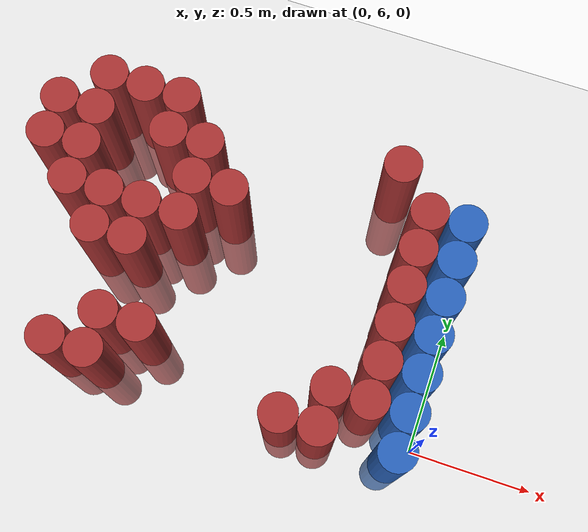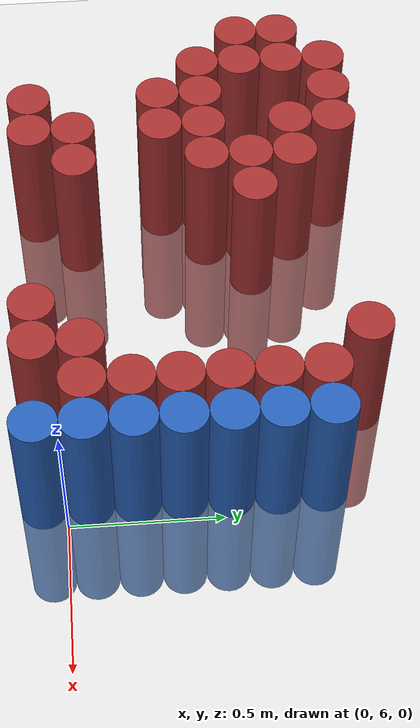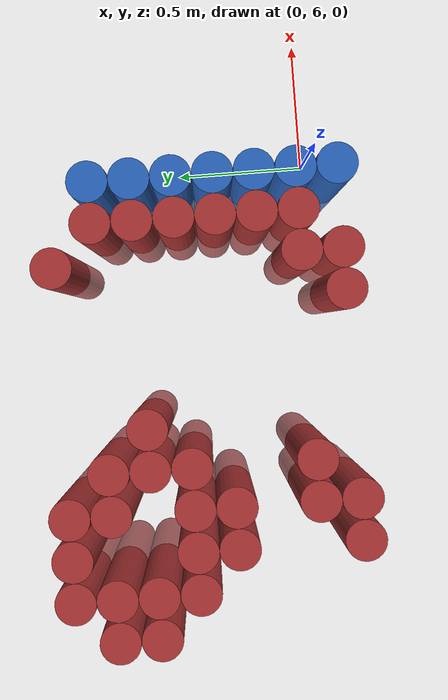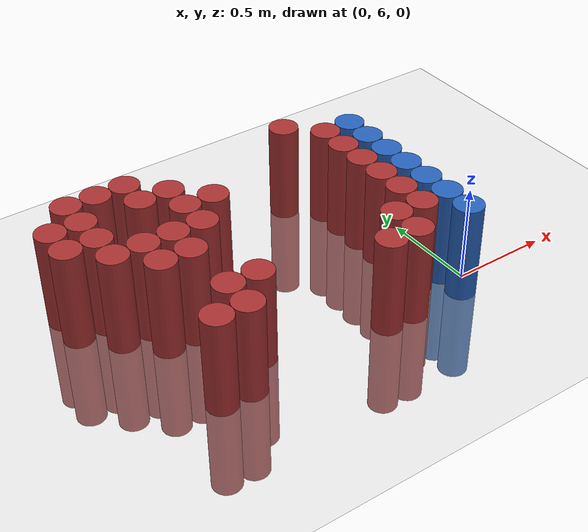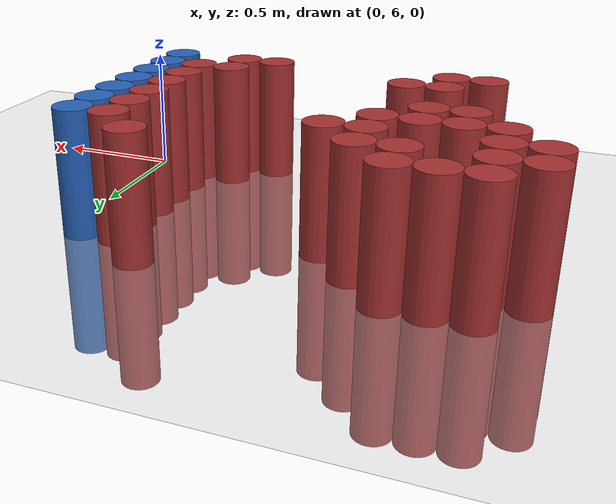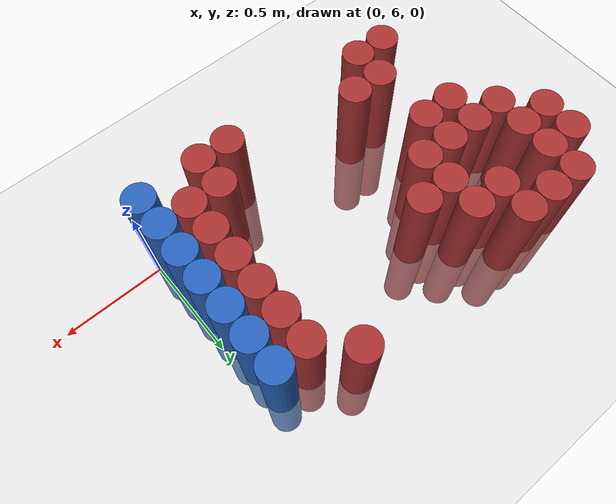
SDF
<sdf version="1.6">
 <world name="default">
  <model name="ground_plane">
   <static>1</static>
   <link name="link">
    <collision name="collision">
     <geometry><plane><normal>0 0 1</normal><size>100 100</size></plane></geometry>
     <surface><friction><ode><mu>100</mu><mu2>50</mu2></ode></friction></surface>
    </collision>
    <visual name="visual">
     <cast_shadows>0</cast_shadows>
     <geometry><plane><normal>0 0 1</normal><size>100 100</size></plane></geometry>
     <material>
      <script><uri>file://media/materials/scripts/gazebo.material</uri><name>Gazebo/Grey</name></script>
     </material>
    </visual>
   </link>
  </model>
  <model name="unit_cylinder_212">
   <static>1</static>
   <pose>-1.725000 6.675000 0.000000 0.000000 0.000000 0.000000</pose>
   <link name="link">
    <inertial>
     <mass>1</mass>
     <inertia><ixx>0.145833</ixx><ixy>0</ixy><ixz>0</ixz><iyy>0.145833</iyy><iyz>0</iyz><izz>0.125</izz></inertia>
    </inertial>
    <collision name="collision">
     <geometry><cylinder><radius>0.075000</radius><length>1</length></cylinder></geometry>
    </collision>
    <visual name="visual">
     <geometry><cylinder><radius>0.075000</radius><length>1</length></cylinder></geometry>
     <material>
      <ambient>0.648000 0.192000 0.192000 1</ambient>
      <diffuse>0.648000 0.192000 0.192000 1</diffuse>
     </material>
     <material>
      <script><name>Gazebo/Grey</name><uri>file://media/materials/scripts/gazebo.material</uri></script>
     </material>
    </visual>
    <sensor name="sensor_contact" type="contact"><contact><collision>collision</collision></contact></sensor>
   </link>
   <plugin filename="gz-sim-touchplugin-system" name="gz::sim::systems::TouchPlugin">
    <target>robot</target>
    <namespace>robot</namespace>
    <time>0.001</time>
    <enabled>true</enabled>
   </plugin>
  </model>
  <model name="unit_cylinder_213">
   <static>1</static>
   <pose>-1.725000 6.825000 0.000000 0.000000 0.000000 0.000000</pose>
   <link name="link">
    <inertial>
     <mass>1</mass>
     <inertia><ixx>0.145833</ixx><ixy>0</ixy><ixz>0</ixz><iyy>0.145833</iyy><iyz>0</iyz><izz>0.125</izz></inertia>
    </inertial>
    <collision name="collision">
     <geometry><cylinder><radius>0.075000</radius><length>1</length></cylinder></geometry>
    </collision>
    <visual name="visual">
     <geometry><cylinder><radius>0.075000</radius><length>1</length></cylinder></geometry>
     <material>
      <ambient>0.648000 0.192000 0.192000 1</ambient>
      <diffuse>0.648000 0.192000 0.192000 1</diffuse>
     </material>
     <material>
      <script><name>Gazebo/Grey</name><uri>file://media/materials/scripts/gazebo.material</uri></script>
     </material>
    </visual>
    <sensor name="sensor_contact" type="contact"><contact><collision>collision</collision></contact></sensor>
   </link>
   <plugin filename="gz-sim-touchplugin-system" name="gz::sim::systems::TouchPlugin">
    <target>robot</target>
    <namespace>robot</namespace>
    <time>0.001</time>
    <enabled>true</enabled>
   </plugin>
  </model>
  <model name="unit_cylinder_218">
   <static>1</static>
   <pose>-1.575000 6.525000 0.000000 0.000000 0.000000 0.000000</pose>
   <link name="link">
    <inertial>
     <mass>1</mass>
     <inertia><ixx>0.145833</ixx><ixy>0</ixy><ixz>0</ixz><iyy>0.145833</iyy><iyz>0</iyz><izz>0.125</izz></inertia>
    </inertial>
    <collision name="collision">
     <geometry><cylinder><radius>0.075000</radius><length>1</length></cylinder></geometry>
    </collision>
    <visual name="visual">
     <geometry><cylinder><radius>0.075000</radius><length>1</length></cylinder></geometry>
     <material>
      <ambient>0.648000 0.192000 0.192000 1</ambient>
      <diffuse>0.648000 0.192000 0.192000 1</diffuse>
     </material>
     <material>
      <script><name>Gazebo/Grey</name><uri>file://media/materials/scripts/gazebo.material</uri></script>
     </material>
    </visual>
    <sensor name="sensor_contact" type="contact"><contact><collision>collision</collision></contact></sensor>
   </link>
   <plugin filename="gz-sim-touchplugin-system" name="gz::sim::systems::TouchPlugin">
    <target>robot</target>
    <namespace>robot</namespace>
    <time>0.001</time>
    <enabled>true</enabled>
   </plugin>
  </model>
  <model name="unit_cylinder_219">
   <static>1</static>
   <pose>-1.575000 6.675000 0.000000 0.000000 0.000000 0.000000</pose>
   <link name="link">
    <inertial>
     <mass>1</mass>
     <inertia><ixx>0.145833</ixx><ixy>0</ixy><ixz>0</ixz><iyy>0.145833</iyy><iyz>0</iyz><izz>0.125</izz></inertia>
    </inertial>
    <collision name="collision">
     <geometry><cylinder><radius>0.075000</radius><length>1</length></cylinder></geometry>
    </collision>
    <visual name="visual">
     <geometry><cylinder><radius>0.075000</radius><length>1</length></cylinder></geometry>
     <material>
      <ambient>0.648000 0.192000 0.192000 1</ambient>
      <diffuse>0.648000 0.192000 0.192000 1</diffuse>
     </material>
     <material>
      <script><name>Gazebo/Grey</name><uri>file://media/materials/scripts/gazebo.material</uri></script>
     </material>
    </visual>
    <sensor name="sensor_contact" type="contact"><contact><collision>collision</collision></contact></sensor>
   </link>
   <plugin filename="gz-sim-touchplugin-system" name="gz::sim::systems::TouchPlugin">
    <target>robot</target>
    <namespace>robot</namespace>
    <time>0.001</time>
    <enabled>true</enabled>
   </plugin>
  </model>
  <model name="unit_cylinder_220">
   <static>1</static>
   <pose>-1.575000 6.825000 0.000000 0.000000 0.000000 0.000000</pose>
   <link name="link">
    <inertial>
     <mass>1</mass>
     <inertia><ixx>0.145833</ixx><ixy>0</ixy><ixz>0</ixz><iyy>0.145833</iyy><iyz>0</iyz><izz>0.125</izz></inertia>
    </inertial>
    <collision name="collision">
     <geometry><cylinder><radius>0.075000</radius><length>1</length></cylinder></geometry>
    </collision>
    <visual name="visual">
     <geometry><cylinder><radius>0.075000</radius><length>1</length></cylinder></geometry>
     <material>
      <ambient>0.648000 0.192000 0.192000 1</ambient>
      <diffuse>0.648000 0.192000 0.192000 1</diffuse>
     </material>
     <material>
      <script><name>Gazebo/Grey</name><uri>file://media/materials/scripts/gazebo.material</uri></script>
     </material>
    </visual>
    <sensor name="sensor_contact" type="contact"><contact><collision>collision</collision></contact></sensor>
   </link>
   <plugin filename="gz-sim-touchplugin-system" name="gz::sim::systems::TouchPlugin">
    <target>robot</target>
    <namespace>robot</namespace>
    <time>0.001</time>
    <enabled>true</enabled>
   </plugin>
  </model>
  <model name="unit_cylinder_221">
   <static>1</static>
   <pose>-1.575000 6.975000 0.000000 0.000000 0.000000 0.000000</pose>
   <link name="link">
    <inertial>
     <mass>1</mass>
     <inertia><ixx>0.145833</ixx><ixy>0</ixy><ixz>0</ixz><iyy>0.145833</iyy><iyz>0</iyz><izz>0.125</izz></inertia>
    </inertial>
    <collision name="collision">
     <geometry><cylinder><radius>0.075000</radius><length>1</length></cylinder></geometry>
    </collision>
    <visual name="visual">
     <geometry><cylinder><radius>0.075000</radius><length>1</length></cylinder></geometry>
     <material>
      <ambient>0.648000 0.192000 0.192000 1</ambient>
      <diffuse>0.648000 0.192000 0.192000 1</diffuse>
     </material>
     <material>
      <script><name>Gazebo/Grey</name><uri>file://media/materials/scripts/gazebo.material</uri></script>
     </material>
    </visual>
    <sensor name="sensor_contact" type="contact"><contact><collision>collision</collision></contact></sensor>
   </link>
   <plugin filename="gz-sim-touchplugin-system" name="gz::sim::systems::TouchPlugin">
    <target>robot</target>
    <namespace>robot</namespace>
    <time>0.001</time>
    <enabled>true</enabled>
   </plugin>
  </model>
  <model name="unit_cylinder_228">
   <static>1</static>
   <pose>-1.425000 5.925000 0.000000 0.000000 0.000000 0.000000</pose>
   <link name="link">
    <inertial>
     <mass>1</mass>
     <inertia><ixx>0.145833</ixx><ixy>0</ixy><ixz>0</ixz><iyy>0.145833</iyy><iyz>0</iyz><izz>0.125</izz></inertia>
    </inertial>
    <collision name="collision">
     <geometry><cylinder><radius>0.075000</radius><length>1</length></cylinder></geometry>
    </collision>
    <visual name="visual">
     <geometry><cylinder><radius>0.075000</radius><length>1</length></cylinder></geometry>
     <material>
      <ambient>0.648000 0.192000 0.192000 1</ambient>
      <diffuse>0.648000 0.192000 0.192000 1</diffuse>
     </material>
     <material>
      <script><name>Gazebo/Grey</name><uri>file://media/materials/scripts/gazebo.material</uri></script>
     </material>
    </visual>
    <sensor name="sensor_contact" type="contact"><contact><collision>collision</collision></contact></sensor>
   </link>
   <plugin filename="gz-sim-touchplugin-system" name="gz::sim::systems::TouchPlugin">
    <target>robot</target>
    <namespace>robot</namespace>
    <time>0.001</time>
    <enabled>true</enabled>
   </plugin>
  </model>
  <model name="unit_cylinder_229">
   <static>1</static>
   <pose>-1.425000 6.375000 0.000000 0.000000 0.000000 0.000000</pose>
   <link name="link">
    <inertial>
     <mass>1</mass>
     <inertia><ixx>0.145833</ixx><ixy>0</ixy><ixz>0</ixz><iyy>0.145833</iyy><iyz>0</iyz><izz>0.125</izz></inertia>
    </inertial>
    <collision name="collision">
     <geometry><cylinder><radius>0.075000</radius><length>1</length></cylinder></geometry>
    </collision>
    <visual name="visual">
     <geometry><cylinder><radius>0.075000</radius><length>1</length></cylinder></geometry>
     <material>
      <ambient>0.648000 0.192000 0.192000 1</ambient>
      <diffuse>0.648000 0.192000 0.192000 1</diffuse>
     </material>
     <material>
      <script><name>Gazebo/Grey</name><uri>file://media/materials/scripts/gazebo.material</uri></script>
     </material>
    </visual>
    <sensor name="sensor_contact" type="contact"><contact><collision>collision</collision></contact></sensor>
   </link>
   <plugin filename="gz-sim-touchplugin-system" name="gz::sim::systems::TouchPlugin">
    <target>robot</target>
    <namespace>robot</namespace>
    <time>0.001</time>
    <enabled>true</enabled>
   </plugin>
  </model>
  <model name="unit_cylinder_230">
   <static>1</static>
   <pose>-1.425000 6.525000 0.000000 0.000000 0.000000 0.000000</pose>
   <link name="link">
    <inertial>
     <mass>1</mass>
     <inertia><ixx>0.145833</ixx><ixy>0</ixy><ixz>0</ixz><iyy>0.145833</iyy><iyz>0</iyz><izz>0.125</izz></inertia>
    </inertial>
    <collision name="collision">
     <geometry><cylinder><radius>0.075000</radius><length>1</length></cylinder></geometry>
    </collision>
    <visual name="visual">
     <geometry><cylinder><radius>0.075000</radius><length>1</length></cylinder></geometry>
     <material>
      <ambient>0.648000 0.192000 0.192000 1</ambient>
      <diffuse>0.648000 0.192000 0.192000 1</diffuse>
     </material>
     <material>
      <script><name>Gazebo/Grey</name><uri>file://media/materials/scripts/gazebo.material</uri></script>
     </material>
    </visual>
    <sensor name="sensor_contact" type="contact"><contact><collision>collision</collision></contact></sensor>
   </link>
   <plugin filename="gz-sim-touchplugin-system" name="gz::sim::systems::TouchPlugin">
    <target>robot</target>
    <namespace>robot</namespace>
    <time>0.001</time>
    <enabled>true</enabled>
   </plugin>
  </model>
  <model name="unit_cylinder_231">
   <static>1</static>
   <pose>-1.425000 6.975000 0.000000 0.000000 0.000000 0.000000</pose>
   <link name="link">
    <inertial>
     <mass>1</mass>
     <inertia><ixx>0.145833</ixx><ixy>0</ixy><ixz>0</ixz><iyy>0.145833</iyy><iyz>0</iyz><izz>0.125</izz></inertia>
    </inertial>
    <collision name="collision">
     <geometry><cylinder><radius>0.075000</radius><length>1</length></cylinder></geometry>
    </collision>
    <visual name="visual">
     <geometry><cylinder><radius>0.075000</radius><length>1</length></cylinder></geometry>
     <material>
      <ambient>0.648000 0.192000 0.192000 1</ambient>
      <diffuse>0.648000 0.192000 0.192000 1</diffuse>
     </material>
     <material>
      <script><name>Gazebo/Grey</name><uri>file://media/materials/scripts/gazebo.material</uri></script>
     </material>
    </visual>
    <sensor name="sensor_contact" type="contact"><contact><collision>collision</collision></contact></sensor>
   </link>
   <plugin filename="gz-sim-touchplugin-system" name="gz::sim::systems::TouchPlugin">
    <target>robot</target>
    <namespace>robot</namespace>
    <time>0.001</time>
    <enabled>true</enabled>
   </plugin>
  </model>
  <model name="unit_cylinder_245">
   <static>1</static>
   <pose>-1.275000 5.925000 0.000000 0.000000 0.000000 0.000000</pose>
   <link name="link">
    <inertial>
     <mass>1</mass>
     <inertia><ixx>0.145833</ixx><ixy>0</ixy><ixz>0</ixz><iyy>0.145833</iyy><iyz>0</iyz><izz>0.125</izz></inertia>
    </inertial>
    <collision name="collision">
     <geometry><cylinder><radius>0.075000</radius><length>1</length></cylinder></geometry>
    </collision>
    <visual name="visual">
     <geometry><cylinder><radius>0.075000</radius><length>1</length></cylinder></geometry>
     <material>
      <ambient>0.648000 0.192000 0.192000 1</ambient>
      <diffuse>0.648000 0.192000 0.192000 1</diffuse>
     </material>
     <material>
      <script><name>Gazebo/Grey</name><uri>file://media/materials/scripts/gazebo.material</uri></script>
     </material>
    </visual>
    <sensor name="sensor_contact" type="contact"><contact><collision>collision</collision></contact></sensor>
   </link>
   <plugin filename="gz-sim-touchplugin-system" name="gz::sim::systems::TouchPlugin">
    <target>robot</target>
    <namespace>robot</namespace>
    <time>0.001</time>
    <enabled>true</enabled>
   </plugin>
  </model>
  <model name="unit_cylinder_246">
   <static>1</static>
   <pose>-1.275000 6.075000 0.000000 0.000000 0.000000 0.000000</pose>
   <link name="link">
    <inertial>
     <mass>1</mass>
     <inertia><ixx>0.145833</ixx><ixy>0</ixy><ixz>0</ixz><iyy>0.145833</iyy><iyz>0</iyz><izz>0.125</izz></inertia>
    </inertial>
    <collision name="collision">
     <geometry><cylinder><radius>0.075000</radius><length>1</length></cylinder></geometry>
    </collision>
    <visual name="visual">
     <geometry><cylinder><radius>0.075000</radius><length>1</length></cylinder></geometry>
     <material>
      <ambient>0.648000 0.192000 0.192000 1</ambient>
      <diffuse>0.648000 0.192000 0.192000 1</diffuse>
     </material>
     <material>
      <script><name>Gazebo/Grey</name><uri>file://media/materials/scripts/gazebo.material</uri></script>
     </material>
    </visual>
    <sensor name="sensor_contact" type="contact"><contact><collision>collision</collision></contact></sensor>
   </link>
   <plugin filename="gz-sim-touchplugin-system" name="gz::sim::systems::TouchPlugin">
    <target>robot</target>
    <namespace>robot</namespace>
    <time>0.001</time>
    <enabled>true</enabled>
   </plugin>
  </model>
  <model name="unit_cylinder_247">
   <static>1</static>
   <pose>-1.275000 6.375000 0.000000 0.000000 0.000000 0.000000</pose>
   <link name="link">
    <inertial>
     <mass>1</mass>
     <inertia><ixx>0.145833</ixx><ixy>0</ixy><ixz>0</ixz><iyy>0.145833</iyy><iyz>0</iyz><izz>0.125</izz></inertia>
    </inertial>
    <collision name="collision">
     <geometry><cylinder><radius>0.075000</radius><length>1</length></cylinder></geometry>
    </collision>
    <visual name="visual">
     <geometry><cylinder><radius>0.075000</radius><length>1</length></cylinder></geometry>
     <material>
      <ambient>0.648000 0.192000 0.192000 1</ambient>
      <diffuse>0.648000 0.192000 0.192000 1</diffuse>
     </material>
     <material>
      <script><name>Gazebo/Grey</name><uri>file://media/materials/scripts/gazebo.material</uri></script>
     </material>
    </visual>
    <sensor name="sensor_contact" type="contact"><contact><collision>collision</collision></contact></sensor>
   </link>
   <plugin filename="gz-sim-touchplugin-system" name="gz::sim::systems::TouchPlugin">
    <target>robot</target>
    <namespace>robot</namespace>
    <time>0.001</time>
    <enabled>true</enabled>
   </plugin>
  </model>
  <model name="unit_cylinder_248">
   <static>1</static>
   <pose>-1.275000 6.525000 0.000000 0.000000 0.000000 0.000000</pose>
   <link name="link">
    <inertial>
     <mass>1</mass>
     <inertia><ixx>0.145833</ixx><ixy>0</ixy><ixz>0</ixz><iyy>0.145833</iyy><iyz>0</iyz><izz>0.125</izz></inertia>
    </inertial>
    <collision name="collision">
     <geometry><cylinder><radius>0.075000</radius><length>1</length></cylinder></geometry>
    </collision>
    <visual name="visual">
     <geometry><cylinder><radius>0.075000</radius><length>1</length></cylinder></geometry>
     <material>
      <ambient>0.648000 0.192000 0.192000 1</ambient>
      <diffuse>0.648000 0.192000 0.192000 1</diffuse>
     </material>
     <material>
      <script><name>Gazebo/Grey</name><uri>file://media/materials/scripts/gazebo.material</uri></script>
     </material>
    </visual>
    <sensor name="sensor_contact" type="contact"><contact><collision>collision</collision></contact></sensor>
   </link>
   <plugin filename="gz-sim-touchplugin-system" name="gz::sim::systems::TouchPlugin">
    <target>robot</target>
    <namespace>robot</namespace>
    <time>0.001</time>
    <enabled>true</enabled>
   </plugin>
  </model>
  <model name="unit_cylinder_249">
   <static>1</static>
   <pose>-1.275000 6.825000 0.000000 0.000000 0.000000 0.000000</pose>
   <link name="link">
    <inertial>
     <mass>1</mass>
     <inertia><ixx>0.145833</ixx><ixy>0</ixy><ixz>0</ixz><iyy>0.145833</iyy><iyz>0</iyz><izz>0.125</izz></inertia>
    </inertial>
    <collision name="collision">
     <geometry><cylinder><radius>0.075000</radius><length>1</length></cylinder></geometry>
    </collision>
    <visual name="visual">
     <geometry><cylinder><radius>0.075000</radius><length>1</length></cylinder></geometry>
     <material>
      <ambient>0.648000 0.192000 0.192000 1</ambient>
      <diffuse>0.648000 0.192000 0.192000 1</diffuse>
     </material>
     <material>
      <script><name>Gazebo/Grey</name><uri>file://media/materials/scripts/gazebo.material</uri></script>
     </material>
    </visual>
    <sensor name="sensor_contact" type="contact"><contact><collision>collision</collision></contact></sensor>
   </link>
   <plugin filename="gz-sim-touchplugin-system" name="gz::sim::systems::TouchPlugin">
    <target>robot</target>
    <namespace>robot</namespace>
    <time>0.001</time>
    <enabled>true</enabled>
   </plugin>
  </model>
  <model name="unit_cylinder_250">
   <static>1</static>
   <pose>-1.275000 6.975000 0.000000 0.000000 0.000000 0.000000</pose>
   <link name="link">
    <inertial>
     <mass>1</mass>
     <inertia><ixx>0.145833</ixx><ixy>0</ixy><ixz>0</ixz><iyy>0.145833</iyy><iyz>0</iyz><izz>0.125</izz></inertia>
    </inertial>
    <collision name="collision">
     <geometry><cylinder><radius>0.075000</radius><length>1</length></cylinder></geometry>
    </collision>
    <visual name="visual">
     <geometry><cylinder><radius>0.075000</radius><length>1</length></cylinder></geometry>
     <material>
      <ambient>0.648000 0.192000 0.192000 1</ambient>
      <diffuse>0.648000 0.192000 0.192000 1</diffuse>
     </material>
     <material>
      <script><name>Gazebo/Grey</name><uri>file://media/materials/scripts/gazebo.material</uri></script>
     </material>
    </visual>
    <sensor name="sensor_contact" type="contact"><contact><collision>collision</collision></contact></sensor>
   </link>
   <plugin filename="gz-sim-touchplugin-system" name="gz::sim::systems::TouchPlugin">
    <target>robot</target>
    <namespace>robot</namespace>
    <time>0.001</time>
    <enabled>true</enabled>
   </plugin>
  </model>
  <model name="unit_cylinder_260">
   <static>1</static>
   <pose>-1.125000 6.075000 0.000000 0.000000 0.000000 0.000000</pose>
   <link name="link">
    <inertial>
     <mass>1</mass>
     <inertia><ixx>0.145833</ixx><ixy>0</ixy><ixz>0</ixz><iyy>0.145833</iyy><iyz>0</iyz><izz>0.125</izz></inertia>
    </inertial>
    <collision name="collision">
     <geometry><cylinder><radius>0.075000</radius><length>1</length></cylinder></geometry>
    </collision>
    <visual name="visual">
     <geometry><cylinder><radius>0.075000</radius><length>1</length></cylinder></geometry>
     <material>
      <ambient>0.648000 0.192000 0.192000 1</ambient>
      <diffuse>0.648000 0.192000 0.192000 1</diffuse>
     </material>
     <material>
      <script><name>Gazebo/Grey</name><uri>file://media/materials/scripts/gazebo.material</uri></script>
     </material>
    </visual>
    <sensor name="sensor_contact" type="contact"><contact><collision>collision</collision></contact></sensor>
   </link>
   <plugin filename="gz-sim-touchplugin-system" name="gz::sim::systems::TouchPlugin">
    <target>robot</target>
    <namespace>robot</namespace>
    <time>0.001</time>
    <enabled>true</enabled>
   </plugin>
  </model>
  <model name="unit_cylinder_261">
   <static>1</static>
   <pose>-1.125000 6.525000 0.000000 0.000000 0.000000 0.000000</pose>
   <link name="link">
    <inertial>
     <mass>1</mass>
     <inertia><ixx>0.145833</ixx><ixy>0</ixy><ixz>0</ixz><iyy>0.145833</iyy><iyz>0</iyz><izz>0.125</izz></inertia>
    </inertial>
    <collision name="collision">
     <geometry><cylinder><radius>0.075000</radius><length>1</length></cylinder></geometry>
    </collision>
    <visual name="visual">
     <geometry><cylinder><radius>0.075000</radius><length>1</length></cylinder></geometry>
     <material>
      <ambient>0.648000 0.192000 0.192000 1</ambient>
      <diffuse>0.648000 0.192000 0.192000 1</diffuse>
     </material>
     <material>
      <script><name>Gazebo/Grey</name><uri>file://media/materials/scripts/gazebo.material</uri></script>
     </material>
    </visual>
    <sensor name="sensor_contact" type="contact"><contact><collision>collision</collision></contact></sensor>
   </link>
   <plugin filename="gz-sim-touchplugin-system" name="gz::sim::systems::TouchPlugin">
    <target>robot</target>
    <namespace>robot</namespace>
    <time>0.001</time>
    <enabled>true</enabled>
   </plugin>
  </model>
  <model name="unit_cylinder_262">
   <static>1</static>
   <pose>-1.125000 6.675000 0.000000 0.000000 0.000000 0.000000</pose>
   <link name="link">
    <inertial>
     <mass>1</mass>
     <inertia><ixx>0.145833</ixx><ixy>0</ixy><ixz>0</ixz><iyy>0.145833</iyy><iyz>0</iyz><izz>0.125</izz></inertia>
    </inertial>
    <collision name="collision">
     <geometry><cylinder><radius>0.075000</radius><length>1</length></cylinder></geometry>
    </collision>
    <visual name="visual">
     <geometry><cylinder><radius>0.075000</radius><length>1</length></cylinder></geometry>
     <material>
      <ambient>0.648000 0.192000 0.192000 1</ambient>
      <diffuse>0.648000 0.192000 0.192000 1</diffuse>
     </material>
     <material>
      <script><name>Gazebo/Grey</name><uri>file://media/materials/scripts/gazebo.material</uri></script>
     </material>
    </visual>
    <sensor name="sensor_contact" type="contact"><contact><collision>collision</collision></contact></sensor>
   </link>
   <plugin filename="gz-sim-touchplugin-system" name="gz::sim::systems::TouchPlugin">
    <target>robot</target>
    <namespace>robot</namespace>
    <time>0.001</time>
    <enabled>true</enabled>
   </plugin>
  </model>
  <model name="unit_cylinder_263">
   <static>1</static>
   <pose>-1.125000 6.825000 0.000000 0.000000 0.000000 0.000000</pose>
   <link name="link">
    <inertial>
     <mass>1</mass>
     <inertia><ixx>0.145833</ixx><ixy>0</ixy><ixz>0</ixz><iyy>0.145833</iyy><iyz>0</iyz><izz>0.125</izz></inertia>
    </inertial>
    <collision name="collision">
     <geometry><cylinder><radius>0.075000</radius><length>1</length></cylinder></geometry>
    </collision>
    <visual name="visual">
     <geometry><cylinder><radius>0.075000</radius><length>1</length></cylinder></geometry>
     <material>
      <ambient>0.648000 0.192000 0.192000 1</ambient>
      <diffuse>0.648000 0.192000 0.192000 1</diffuse>
     </material>
     <material>
      <script><name>Gazebo/Grey</name><uri>file://media/materials/scripts/gazebo.material</uri></script>
     </material>
    </visual>
    <sensor name="sensor_contact" type="contact"><contact><collision>collision</collision></contact></sensor>
   </link>
   <plugin filename="gz-sim-touchplugin-system" name="gz::sim::systems::TouchPlugin">
    <target>robot</target>
    <namespace>robot</namespace>
    <time>0.001</time>
    <enabled>true</enabled>
   </plugin>
  </model>
  <model name="unit_cylinder_267">
   <static>1</static>
   <pose>-0.975000 6.675000 0.000000 0.000000 0.000000 0.000000</pose>
   <link name="link">
    <inertial>
     <mass>1</mass>
     <inertia><ixx>0.145833</ixx><ixy>0</ixy><ixz>0</ixz><iyy>0.145833</iyy><iyz>0</iyz><izz>0.125</izz></inertia>
    </inertial>
    <collision name="collision">
     <geometry><cylinder><radius>0.075000</radius><length>1</length></cylinder></geometry>
    </collision>
    <visual name="visual">
     <geometry><cylinder><radius>0.075000</radius><length>1</length></cylinder></geometry>
     <material>
      <ambient>0.648000 0.192000 0.192000 1</ambient>
      <diffuse>0.648000 0.192000 0.192000 1</diffuse>
     </material>
     <material>
      <script><name>Gazebo/Grey</name><uri>file://media/materials/scripts/gazebo.material</uri></script>
     </material>
    </visual>
    <sensor name="sensor_contact" type="contact"><contact><collision>collision</collision></contact></sensor>
   </link>
   <plugin filename="gz-sim-touchplugin-system" name="gz::sim::systems::TouchPlugin">
    <target>robot</target>
    <namespace>robot</namespace>
    <time>0.001</time>
    <enabled>true</enabled>
   </plugin>
  </model>
  <model name="unit_cylinder_280">
   <static>1</static>
   <pose>-0.525000 5.925000 0.000000 0.000000 0.000000 0.000000</pose>
   <link name="link">
    <inertial>
     <mass>1</mass>
     <inertia><ixx>0.145833</ixx><ixy>0</ixy><ixz>0</ixz><iyy>0.145833</iyy><iyz>0</iyz><izz>0.125</izz></inertia>
    </inertial>
    <collision name="collision">
     <geometry><cylinder><radius>0.075000</radius><length>1</length></cylinder></geometry>
    </collision>
    <visual name="visual">
     <geometry><cylinder><radius>0.075000</radius><length>1</length></cylinder></geometry>
     <material>
      <ambient>0.648000 0.192000 0.192000 1</ambient>
      <diffuse>0.648000 0.192000 0.192000 1</diffuse>
     </material>
     <material>
      <script><name>Gazebo/Grey</name><uri>file://media/materials/scripts/gazebo.material</uri></script>
     </material>
    </visual>
    <sensor name="sensor_contact" type="contact"><contact><collision>collision</collision></contact></sensor>
   </link>
   <plugin filename="gz-sim-touchplugin-system" name="gz::sim::systems::TouchPlugin">
    <target>robot</target>
    <namespace>robot</namespace>
    <time>0.001</time>
    <enabled>true</enabled>
   </plugin>
  </model>
  <model name="unit_cylinder_285">
   <static>1</static>
   <pose>-0.375000 5.925000 0.000000 0.000000 0.000000 0.000000</pose>
   <link name="link">
    <inertial>
     <mass>1</mass>
     <inertia><ixx>0.145833</ixx><ixy>0</ixy><ixz>0</ixz><iyy>0.145833</iyy><iyz>0</iyz><izz>0.125</izz></inertia>
    </inertial>
    <collision name="collision">
     <geometry><cylinder><radius>0.075000</radius><length>1</length></cylinder></geometry>
    </collision>
    <visual name="visual">
     <geometry><cylinder><radius>0.075000</radius><length>1</length></cylinder></geometry>
     <material>
      <ambient>0.648000 0.192000 0.192000 1</ambient>
      <diffuse>0.648000 0.192000 0.192000 1</diffuse>
     </material>
     <material>
      <script><name>Gazebo/Grey</name><uri>file://media/materials/scripts/gazebo.material</uri></script>
     </material>
    </visual>
    <sensor name="sensor_contact" type="contact"><contact><collision>collision</collision></contact></sensor>
   </link>
   <plugin filename="gz-sim-touchplugin-system" name="gz::sim::systems::TouchPlugin">
    <target>robot</target>
    <namespace>robot</namespace>
    <time>0.001</time>
    <enabled>true</enabled>
   </plugin>
  </model>
  <model name="unit_cylinder_286">
   <static>1</static>
   <pose>-0.375000 6.075000 0.000000 0.000000 0.000000 0.000000</pose>
   <link name="link">
    <inertial>
     <mass>1</mass>
     <inertia><ixx>0.145833</ixx><ixy>0</ixy><ixz>0</ixz><iyy>0.145833</iyy><iyz>0</iyz><izz>0.125</izz></inertia>
    </inertial>
    <collision name="collision">
     <geometry><cylinder><radius>0.075000</radius><length>1</length></cylinder></geometry>
    </collision>
    <visual name="visual">
     <geometry><cylinder><radius>0.075000</radius><length>1</length></cylinder></geometry>
     <material>
      <ambient>0.648000 0.192000 0.192000 1</ambient>
      <diffuse>0.648000 0.192000 0.192000 1</diffuse>
     </material>
     <material>
      <script><name>Gazebo/Grey</name><uri>file://media/materials/scripts/gazebo.material</uri></script>
     </material>
    </visual>
    <sensor name="sensor_contact" type="contact"><contact><collision>collision</collision></contact></sensor>
   </link>
   <plugin filename="gz-sim-touchplugin-system" name="gz::sim::systems::TouchPlugin">
    <target>robot</target>
    <namespace>robot</namespace>
    <time>0.001</time>
    <enabled>true</enabled>
   </plugin>
  </model>
  <model name="unit_cylinder_287">
   <static>1</static>
   <pose>-0.375000 6.975000 0.000000 0.000000 0.000000 0.000000</pose>
   <link name="link">
    <inertial>
     <mass>1</mass>
     <inertia><ixx>0.145833</ixx><ixy>0</ixy><ixz>0</ixz><iyy>0.145833</iyy><iyz>0</iyz><izz>0.125</izz></inertia>
    </inertial>
    <collision name="collision">
     <geometry><cylinder><radius>0.075000</radius><length>1</length></cylinder></geometry>
    </collision>
    <visual name="visual">
     <geometry><cylinder><radius>0.075000</radius><length>1</length></cylinder></geometry>
     <material>
      <ambient>0.648000 0.192000 0.192000 1</ambient>
      <diffuse>0.648000 0.192000 0.192000 1</diffuse>
     </material>
     <material>
      <script><name>Gazebo/Grey</name><uri>file://media/materials/scripts/gazebo.material</uri></script>
     </material>
    </visual>
    <sensor name="sensor_contact" type="contact"><contact><collision>collision</collision></contact></sensor>
   </link>
   <plugin filename="gz-sim-touchplugin-system" name="gz::sim::systems::TouchPlugin">
    <target>robot</target>
    <namespace>robot</namespace>
    <time>0.001</time>
    <enabled>true</enabled>
   </plugin>
  </model>
  <model name="unit_cylinder_294">
   <static>1</static>
   <pose>-0.225000 6.075000 0.000000 0.000000 0.000000 0.000000</pose>
   <link name="link">
    <inertial>
     <mass>1</mass>
     <inertia><ixx>0.145833</ixx><ixy>0</ixy><ixz>0</ixz><iyy>0.145833</iyy><iyz>0</iyz><izz>0.125</izz></inertia>
    </inertial>
    <collision name="collision">
     <geometry><cylinder><radius>0.075000</radius><length>1</length></cylinder></geometry>
    </collision>
    <visual name="visual">
     <geometry><cylinder><radius>0.075000</radius><length>1</length></cylinder></geometry>
     <material>
      <ambient>0.648000 0.192000 0.192000 1</ambient>
      <diffuse>0.648000 0.192000 0.192000 1</diffuse>
     </material>
     <material>
      <script><name>Gazebo/Grey</name><uri>file://media/materials/scripts/gazebo.material</uri></script>
     </material>
    </visual>
    <sensor name="sensor_contact" type="contact"><contact><collision>collision</collision></contact></sensor>
   </link>
   <plugin filename="gz-sim-touchplugin-system" name="gz::sim::systems::TouchPlugin">
    <target>robot</target>
    <namespace>robot</namespace>
    <time>0.001</time>
    <enabled>true</enabled>
   </plugin>
  </model>
  <model name="unit_cylinder_295">
   <static>1</static>
   <pose>-0.225000 6.225000 0.000000 0.000000 0.000000 0.000000</pose>
   <link name="link">
    <inertial>
     <mass>1</mass>
     <inertia><ixx>0.145833</ixx><ixy>0</ixy><ixz>0</ixz><iyy>0.145833</iyy><iyz>0</iyz><izz>0.125</izz></inertia>
    </inertial>
    <collision name="collision">
     <geometry><cylinder><radius>0.075000</radius><length>1</length></cylinder></geometry>
    </collision>
    <visual name="visual">
     <geometry><cylinder><radius>0.075000</radius><length>1</length></cylinder></geometry>
     <material>
      <ambient>0.648000 0.192000 0.192000 1</ambient>
      <diffuse>0.648000 0.192000 0.192000 1</diffuse>
     </material>
     <material>
      <script><name>Gazebo/Grey</name><uri>file://media/materials/scripts/gazebo.material</uri></script>
     </material>
    </visual>
    <sensor name="sensor_contact" type="contact"><contact><collision>collision</collision></contact></sensor>
   </link>
   <plugin filename="gz-sim-touchplugin-system" name="gz::sim::systems::TouchPlugin">
    <target>robot</target>
    <namespace>robot</namespace>
    <time>0.001</time>
    <enabled>true</enabled>
   </plugin>
  </model>
  <model name="unit_cylinder_296">
   <static>1</static>
   <pose>-0.225000 6.375000 0.000000 0.000000 0.000000 0.000000</pose>
   <link name="link">
    <inertial>
     <mass>1</mass>
     <inertia><ixx>0.145833</ixx><ixy>0</ixy><ixz>0</ixz><iyy>0.145833</iyy><iyz>0</iyz><izz>0.125</izz></inertia>
    </inertial>
    <collision name="collision">
     <geometry><cylinder><radius>0.075000</radius><length>1</length></cylinder></geometry>
    </collision>
    <visual name="visual">
     <geometry><cylinder><radius>0.075000</radius><length>1</length></cylinder></geometry>
     <material>
      <ambient>0.648000 0.192000 0.192000 1</ambient>
      <diffuse>0.648000 0.192000 0.192000 1</diffuse>
     </material>
     <material>
      <script><name>Gazebo/Grey</name><uri>file://media/materials/scripts/gazebo.material</uri></script>
     </material>
    </visual>
    <sensor name="sensor_contact" type="contact"><contact><collision>collision</collision></contact></sensor>
   </link>
   <plugin filename="gz-sim-touchplugin-system" name="gz::sim::systems::TouchPlugin">
    <target>robot</target>
    <namespace>robot</namespace>
    <time>0.001</time>
    <enabled>true</enabled>
   </plugin>
  </model>
  <model name="unit_cylinder_297">
   <static>1</static>
   <pose>-0.225000 6.525000 0.000000 0.000000 0.000000 0.000000</pose>
   <link name="link">
    <inertial>
     <mass>1</mass>
     <inertia><ixx>0.145833</ixx><ixy>0</ixy><ixz>0</ixz><iyy>0.145833</iyy><iyz>0</iyz><izz>0.125</izz></inertia>
    </inertial>
    <collision name="collision">
     <geometry><cylinder><radius>0.075000</radius><length>1</length></cylinder></geometry>
    </collision>
    <visual name="visual">
     <geometry><cylinder><radius>0.075000</radius><length>1</length></cylinder></geometry>
     <material>
      <ambient>0.648000 0.192000 0.192000 1</ambient>
      <diffuse>0.648000 0.192000 0.192000 1</diffuse>
     </material>
     <material>
      <script><name>Gazebo/Grey</name><uri>file://media/materials/scripts/gazebo.material</uri></script>
     </material>
    </visual>
    <sensor name="sensor_contact" type="contact"><contact><collision>collision</collision></contact></sensor>
   </link>
   <plugin filename="gz-sim-touchplugin-system" name="gz::sim::systems::TouchPlugin">
    <target>robot</target>
    <namespace>robot</namespace>
    <time>0.001</time>
    <enabled>true</enabled>
   </plugin>
  </model>
  <model name="unit_cylinder_298">
   <static>1</static>
   <pose>-0.225000 6.675000 0.000000 0.000000 0.000000 0.000000</pose>
   <link name="link">
    <inertial>
     <mass>1</mass>
     <inertia><ixx>0.145833</ixx><ixy>0</ixy><ixz>0</ixz><iyy>0.145833</iyy><iyz>0</iyz><izz>0.125</izz></inertia>
    </inertial>
    <collision name="collision">
     <geometry><cylinder><radius>0.075000</radius><length>1</length></cylinder></geometry>
    </collision>
    <visual name="visual">
     <geometry><cylinder><radius>0.075000</radius><length>1</length></cylinder></geometry>
     <material>
      <ambient>0.648000 0.192000 0.192000 1</ambient>
      <diffuse>0.648000 0.192000 0.192000 1</diffuse>
     </material>
     <material>
      <script><name>Gazebo/Grey</name><uri>file://media/materials/scripts/gazebo.material</uri></script>
     </material>
    </visual>
    <sensor name="sensor_contact" type="contact"><contact><collision>collision</collision></contact></sensor>
   </link>
   <plugin filename="gz-sim-touchplugin-system" name="gz::sim::systems::TouchPlugin">
    <target>robot</target>
    <namespace>robot</namespace>
    <time>0.001</time>
    <enabled>true</enabled>
   </plugin>
  </model>
  <model name="unit_cylinder_299">
   <static>1</static>
   <pose>-0.225000 6.825000 0.000000 0.000000 0.000000 0.000000</pose>
   <link name="link">
    <inertial>
     <mass>1</mass>
     <inertia><ixx>0.145833</ixx><ixy>0</ixy><ixz>0</ixz><iyy>0.145833</iyy><iyz>0</iyz><izz>0.125</izz></inertia>
    </inertial>
    <collision name="collision">
     <geometry><cylinder><radius>0.075000</radius><length>1</length></cylinder></geometry>
    </collision>
    <visual name="visual">
     <geometry><cylinder><radius>0.075000</radius><length>1</length></cylinder></geometry>
     <material>
      <ambient>0.648000 0.192000 0.192000 1</ambient>
      <diffuse>0.648000 0.192000 0.192000 1</diffuse>
     </material>
     <material>
      <script><name>Gazebo/Grey</name><uri>file://media/materials/scripts/gazebo.material</uri></script>
     </material>
    </visual>
    <sensor name="sensor_contact" type="contact"><contact><collision>collision</collision></contact></sensor>
   </link>
   <plugin filename="gz-sim-touchplugin-system" name="gz::sim::systems::TouchPlugin">
    <target>robot</target>
    <namespace>robot</namespace>
    <time>0.001</time>
    <enabled>true</enabled>
   </plugin>
  </model>
  <model name="unit_cylinder_320">
   <static>1</static>
   <pose>-0.075000 5.925000 0.000000 0.000000 0.000000 0.000000</pose>
   <link name="link">
    <inertial>
     <mass>1</mass>
     <inertia><ixx>0.145833</ixx><ixy>0</ixy><ixz>0</ixz><iyy>0.145833</iyy><iyz>0</iyz><izz>0.125</izz></inertia>
    </inertial>
    <collision name="collision">
     <geometry><cylinder><radius>0.075000</radius><length>1</length></cylinder></geometry>
    </collision>
    <visual name="visual">
     <geometry><cylinder><radius>0.075000</radius><length>1</length></cylinder></geometry>
     <material>
      <ambient>0.152000 0.379000 0.720000 1</ambient>
      <diffuse>0.152000 0.379000 0.720000 1</diffuse>
     </material>
     <material>
      <script><name>Gazebo/Grey</name><uri>file://media/materials/scripts/gazebo.material</uri></script>
     </material>
    </visual>
    <sensor name="sensor_contact" type="contact"><contact><collision>collision</collision></contact></sensor>
   </link>
   <plugin filename="gz-sim-touchplugin-system" name="gz::sim::systems::TouchPlugin">
    <target>robot</target>
    <namespace>robot</namespace>
    <time>0.001</time>
    <enabled>true</enabled>
   </plugin>
  </model>
  <model name="unit_cylinder_321">
   <static>1</static>
   <pose>-0.075000 6.075000 0.000000 0.000000 0.000000 0.000000</pose>
   <link name="link">
    <inertial>
     <mass>1</mass>
     <inertia><ixx>0.145833</ixx><ixy>0</ixy><ixz>0</ixz><iyy>0.145833</iyy><iyz>0</iyz><izz>0.125</izz></inertia>
    </inertial>
    <collision name="collision">
     <geometry><cylinder><radius>0.075000</radius><length>1</length></cylinder></geometry>
    </collision>
    <visual name="visual">
     <geometry><cylinder><radius>0.075000</radius><length>1</length></cylinder></geometry>
     <material>
      <ambient>0.152000 0.379000 0.720000 1</ambient>
      <diffuse>0.152000 0.379000 0.720000 1</diffuse>
     </material>
     <material>
      <script><name>Gazebo/Grey</name><uri>file://media/materials/scripts/gazebo.material</uri></script>
     </material>
    </visual>
    <sensor name="sensor_contact" type="contact"><contact><collision>collision</collision></contact></sensor>
   </link>
   <plugin filename="gz-sim-touchplugin-system" name="gz::sim::systems::TouchPlugin">
    <target>robot</target>
    <namespace>robot</namespace>
    <time>0.001</time>
    <enabled>true</enabled>
   </plugin>
  </model>
  <model name="unit_cylinder_322">
   <static>1</static>
   <pose>-0.075000 6.225000 0.000000 0.000000 0.000000 0.000000</pose>
   <link name="link">
    <inertial>
     <mass>1</mass>
     <inertia><ixx>0.145833</ixx><ixy>0</ixy><ixz>0</ixz><iyy>0.145833</iyy><iyz>0</iyz><izz>0.125</izz></inertia>
    </inertial>
    <collision name="collision">
     <geometry><cylinder><radius>0.075000</radius><length>1</length></cylinder></geometry>
    </collision>
    <visual name="visual">
     <geometry><cylinder><radius>0.075000</radius><length>1</length></cylinder></geometry>
     <material>
      <ambient>0.152000 0.379000 0.720000 1</ambient>
      <diffuse>0.152000 0.379000 0.720000 1</diffuse>
     </material>
     <material>
      <script><name>Gazebo/Grey</name><uri>file://media/materials/scripts/gazebo.material</uri></script>
     </material>
    </visual>
    <sensor name="sensor_contact" type="contact"><contact><collision>collision</collision></contact></sensor>
   </link>
   <plugin filename="gz-sim-touchplugin-system" name="gz::sim::systems::TouchPlugin">
    <target>robot</target>
    <namespace>robot</namespace>
    <time>0.001</time>
    <enabled>true</enabled>
   </plugin>
  </model>
  <model name="unit_cylinder_323">
   <static>1</static>
   <pose>-0.075000 6.375000 0.000000 0.000000 0.000000 0.000000</pose>
   <link name="link">
    <inertial>
     <mass>1</mass>
     <inertia><ixx>0.145833</ixx><ixy>0</ixy><ixz>0</ixz><iyy>0.145833</iyy><iyz>0</iyz><izz>0.125</izz></inertia>
    </inertial>
    <collision name="collision">
     <geometry><cylinder><radius>0.075000</radius><length>1</length></cylinder></geometry>
    </collision>
    <visual name="visual">
     <geometry><cylinder><radius>0.075000</radius><length>1</length></cylinder></geometry>
     <material>
      <ambient>0.152000 0.379000 0.720000 1</ambient>
      <diffuse>0.152000 0.379000 0.720000 1</diffuse>
     </material>
     <material>
      <script><name>Gazebo/Grey</name><uri>file://media/materials/scripts/gazebo.material</uri></script>
     </material>
    </visual>
    <sensor name="sensor_contact" type="contact"><contact><collision>collision</collision></contact></sensor>
   </link>
   <plugin filename="gz-sim-touchplugin-system" name="gz::sim::systems::TouchPlugin">
    <target>robot</target>
    <namespace>robot</namespace>
    <time>0.001</time>
    <enabled>true</enabled>
   </plugin>
  </model>
  <model name="unit_cylinder_324">
   <static>1</static>
   <pose>-0.075000 6.525000 0.000000 0.000000 0.000000 0.000000</pose>
   <link name="link">
    <inertial>
     <mass>1</mass>
     <inertia><ixx>0.145833</ixx><ixy>0</ixy><ixz>0</ixz><iyy>0.145833</iyy><iyz>0</iyz><izz>0.125</izz></inertia>
    </inertial>
    <collision name="collision">
     <geometry><cylinder><radius>0.075000</radius><length>1</length></cylinder></geometry>
    </collision>
    <visual name="visual">
     <geometry><cylinder><radius>0.075000</radius><length>1</length></cylinder></geometry>
     <material>
      <ambient>0.152000 0.379000 0.720000 1</ambient>
      <diffuse>0.152000 0.379000 0.720000 1</diffuse>
     </material>
     <material>
      <script><name>Gazebo/Grey</name><uri>file://media/materials/scripts/gazebo.material</uri></script>
     </material>
    </visual>
    <sensor name="sensor_contact" type="contact"><contact><collision>collision</collision></contact></sensor>
   </link>
   <plugin filename="gz-sim-touchplugin-system" name="gz::sim::systems::TouchPlugin">
    <target>robot</target>
    <namespace>robot</namespace>
    <time>0.001</time>
    <enabled>true</enabled>
   </plugin>
  </model>
  <model name="unit_cylinder_325">
   <static>1</static>
   <pose>-0.075000 6.675000 0.000000 0.000000 0.000000 0.000000</pose>
   <link name="link">
    <inertial>
     <mass>1</mass>
     <inertia><ixx>0.145833</ixx><ixy>0</ixy><ixz>0</ixz><iyy>0.145833</iyy><iyz>0</iyz><izz>0.125</izz></inertia>
    </inertial>
    <collision name="collision">
     <geometry><cylinder><radius>0.075000</radius><length>1</length></cylinder></geometry>
    </collision>
    <visual name="visual">
     <geometry><cylinder><radius>0.075000</radius><length>1</length></cylinder></geometry>
     <material>
      <ambient>0.152000 0.379000 0.720000 1</ambient>
      <diffuse>0.152000 0.379000 0.720000 1</diffuse>
     </material>
     <material>
      <script><name>Gazebo/Grey</name><uri>file://media/materials/scripts/gazebo.material</uri></script>
     </material>
    </visual>
    <sensor name="sensor_contact" type="contact"><contact><collision>collision</collision></contact></sensor>
   </link>
   <plugin filename="gz-sim-touchplugin-system" name="gz::sim::systems::TouchPlugin">
    <target>robot</target>
    <namespace>robot</namespace>
    <time>0.001</time>
    <enabled>true</enabled>
   </plugin>
  </model>
  <model name="unit_cylinder_326">
   <static>1</static>
   <pose>-0.075000 6.825000 0.000000 0.000000 0.000000 0.000000</pose>
   <link name="link">
    <inertial>
     <mass>1</mass>
     <inertia><ixx>0.145833</ixx><ixy>0</ixy><ixz>0</ixz><iyy>0.145833</iyy><iyz>0</iyz><izz>0.125</izz></inertia>
    </inertial>
    <collision name="collision">
     <geometry><cylinder><radius>0.075000</radius><length>1</length></cylinder></geometry>
    </collision>
    <visual name="visual">
     <geometry><cylinder><radius>0.075000</radius><length>1</length></cylinder></geometry>
     <material>
      <ambient>0.152000 0.379000 0.720000 1</ambient>
      <diffuse>0.152000 0.379000 0.720000 1</diffuse>
     </material>
     <material>
      <script><name>Gazebo/Grey</name><uri>file://media/materials/scripts/gazebo.material</uri></script>
     </material>
    </visual>
    <sensor name="sensor_contact" type="contact"><contact><collision>collision</collision></contact></sensor>
   </link>
   <plugin filename="gz-sim-touchplugin-system" name="gz::sim::systems::TouchPlugin">
    <target>robot</target>
    <namespace>robot</namespace>
    <time>0.001</time>
    <enabled>true</enabled>
   </plugin>
  </model>
 </world>
</sdf>
